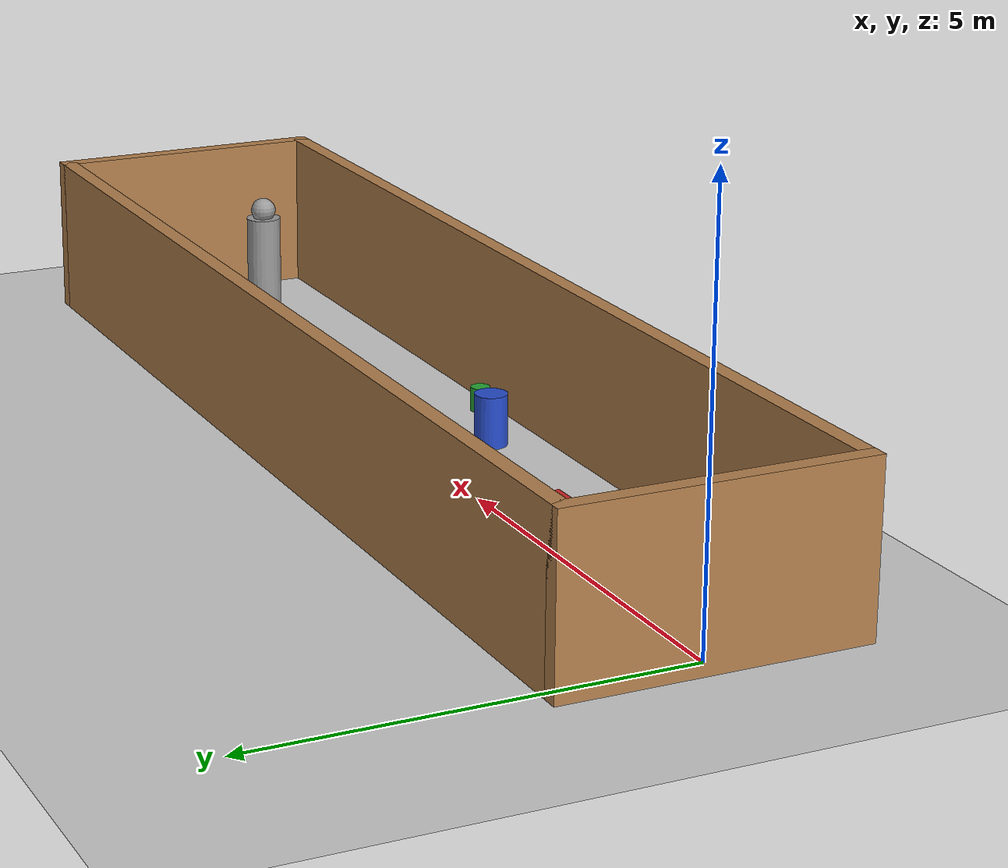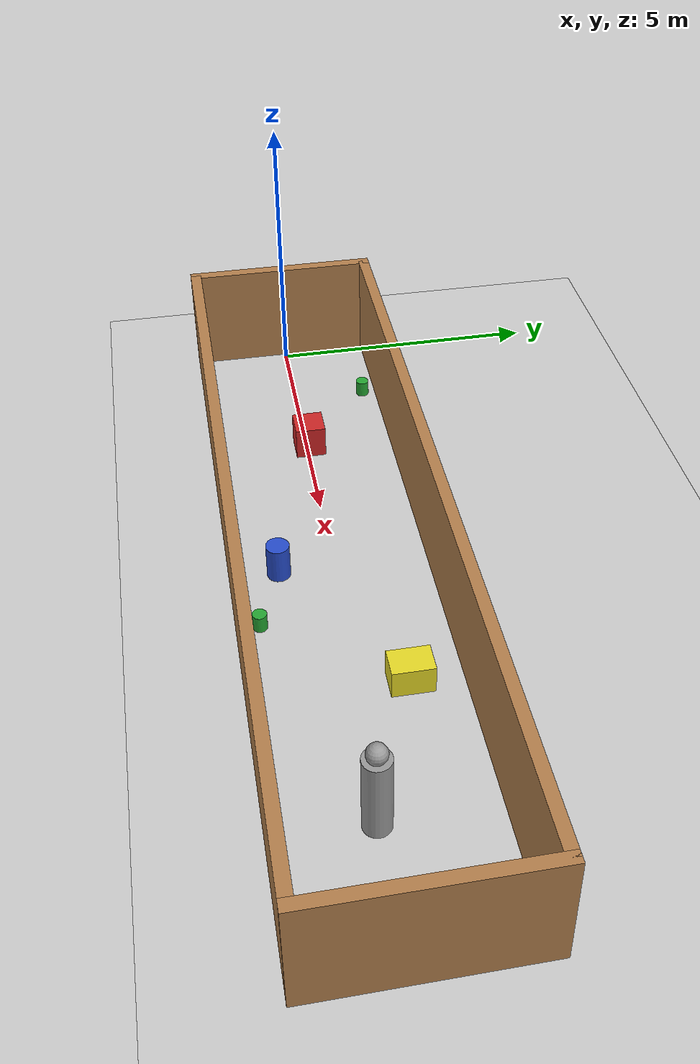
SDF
<?xml version="1.0"?>
<!--
  室内走廊 + 交错障碍物，用于验证"相机看到障碍 -> 转向避让 -> 恢复直行"。
  走廊沿 +x 方向，宽 3.2m，长 14m；机器人从 x=0.6 出发。
-->
<sdf version="1.6">
  <world name="vlbot_corridor">

    <physics name="default_physics" default="true" type="ode">
      <max_step_size>0.002</max_step_size>
      <real_time_factor>1.0</real_time_factor>
      <real_time_update_rate>500</real_time_update_rate>
    </physics>

    <scene>
      <ambient>0.45 0.45 0.48 1</ambient>
      <background>0.65 0.72 0.78 1</background>
      <shadows>true</shadows>
    </scene>

    <light type="directional" name="sun">
      <cast_shadows>true</cast_shadows>
      <pose>0 0 10 0 0 0</pose>
      <diffuse>0.95 0.95 0.92 1</diffuse>
      <specular>0.25 0.25 0.25 1</specular>
      <attenuation>
        <range>1000</range>
        <constant>0.9</constant>
        <linear>0.01</linear>
        <quadratic>0.001</quadratic>
      </attenuation>
      <direction>-0.35 0.2 -0.92</direction>
    </light>

    <!-- 顶灯，保证相机画面亮度稳定 -->
    <light type="point" name="ceiling_light_1">
      <pose>3 0 2.6 0 0 0</pose>
      <diffuse>0.8 0.8 0.75 1</diffuse>
      <specular>0.1 0.1 0.1 1</specular>
      <attenuation>
        <range>12</range>
        <constant>0.6</constant>
        <linear>0.05</linear>
        <quadratic>0.02</quadratic>
      </attenuation>
    </light>
    <light type="point" name="ceiling_light_2">
      <pose>9 0 2.6 0 0 0</pose>
      <diffuse>0.8 0.8 0.75 1</diffuse>
      <specular>0.1 0.1 0.1 1</specular>
      <attenuation>
        <range>12</range>
        <constant>0.6</constant>
        <linear>0.05</linear>
        <quadratic>0.02</quadratic>
      </attenuation>
    </light>

    <!-- 地面 -->
    <model name="ground_plane">
      <static>true</static>
      <link name="link">
        <collision name="collision">
          <geometry><plane><normal>0 0 1</normal><size>40 40</size></plane></geometry>
          <surface>
            <friction><ode><mu>0.8</mu><mu2>0.8</mu2></ode></friction>
          </surface>
        </collision>
        <visual name="visual">
          <geometry><plane><normal>0 0 1</normal><size>40 40</size></plane></geometry>
          <material>
            <script>
              <uri>file://media/materials/scripts/gazebo.material</uri>
              <name>Gazebo/Grey</name>
            </script>
          </material>
        </visual>
      </link>
    </model>

    <!-- 走廊墙体：左 / 右 / 尽头 / 起点后墙 -->
    <model name="wall_left">
      <static>true</static>
      <pose>7.0 1.7 1.0 0 0 0</pose>
      <link name="link">
        <collision name="c"><geometry><box><size>14.4 0.2 2.0</size></box></geometry></collision>
        <visual name="v">
          <geometry><box><size>14.4 0.2 2.0</size></box></geometry>
          <material><script><uri>file://media/materials/scripts/gazebo.material</uri><name>Gazebo/Wood</name></script></material>
        </visual>
      </link>
    </model>
    <model name="wall_right">
      <static>true</static>
      <pose>7.0 -1.7 1.0 0 0 0</pose>
      <link name="link">
        <collision name="c"><geometry><box><size>14.4 0.2 2.0</size></box></geometry></collision>
        <visual name="v">
          <geometry><box><size>14.4 0.2 2.0</size></box></geometry>
          <material><script><uri>file://media/materials/scripts/gazebo.material</uri><name>Gazebo/Wood</name></script></material>
        </visual>
      </link>
    </model>
    <model name="wall_end">
      <static>true</static>
      <pose>14.2 0 1.0 0 0 0</pose>
      <link name="link">
        <collision name="c"><geometry><box><size>0.2 3.6 2.0</size></box></geometry></collision>
        <visual name="v">
          <geometry><box><size>0.2 3.6 2.0</size></box></geometry>
          <material><script><uri>file://media/materials/scripts/gazebo.material</uri><name>Gazebo/Wood</name></script></material>
        </visual>
      </link>
    </model>
    <model name="wall_start">
      <static>true</static>
      <pose>-0.2 0 1.0 0 0 0</pose>
      <link name="link">
        <collision name="c"><geometry><box><size>0.2 3.6 2.0</size></box></geometry></collision>
        <visual name="v">
          <geometry><box><size>0.2 3.6 2.0</size></box></geometry>
          <material><script><uri>file://media/materials/scripts/gazebo.material</uri><name>Gazebo/Wood</name></script></material>
        </visual>
      </link>
    </model>

    <!-- 障碍 1：正中间的红箱子（最典型的“必须绕开”场景） -->
    <model name="red_box">
      <static>true</static>
      <pose>3.2 0.05 0.30 0 0 0</pose>
      <link name="link">
        <collision name="c"><geometry><box><size>0.55 0.55 0.60</size></box></geometry></collision>
        <visual name="v">
          <geometry><box><size>0.55 0.55 0.60</size></box></geometry>
          <material><script><uri>file://media/materials/scripts/gazebo.material</uri><name>Gazebo/Red</name></script></material>
        </visual>
      </link>
    </model>

    <!-- 障碍 2：靠右的蓝色垃圾桶（考验左右判断） -->
    <model name="blue_bin">
      <static>true</static>
      <pose>6.6 -0.95 0.32 0 0 0</pose>
      <link name="link">
        <collision name="c"><geometry><cylinder><radius>0.20</radius><length>0.64</length></cylinder></geometry></collision>
        <visual name="v">
          <geometry><cylinder><radius>0.20</radius><length>0.64</length></cylinder></geometry>
          <material><script><uri>file://media/materials/scripts/gazebo.material</uri><name>Gazebo/Blue</name></script></material>
        </visual>
      </link>
    </model>

    <!-- 障碍 3：靠左的黄色箱子 -->
    <model name="yellow_box">
      <static>true</static>
      <pose>9.4 0.75 0.25 0 0 0</pose>
      <link name="link">
        <collision name="c"><geometry><box><size>0.5 0.7 0.5</size></box></geometry></collision>
        <visual name="v">
          <geometry><box><size>0.5 0.7 0.5</size></box></geometry>
          <material><script><uri>file://media/materials/scripts/gazebo.material</uri><name>Gazebo/Yellow</name></script></material>
        </visual>
      </link>
    </model>

    <!-- 障碍 4：模拟“人”（圆柱身体 + 球头），语义类障碍 -->
    <model name="person">
      <static>true</static>
      <pose>12.0 -0.25 0 0 0 0</pose>
      <link name="link">
        <collision name="body"><pose>0 0 0.85 0 0 0</pose>
          <geometry><cylinder><radius>0.22</radius><length>1.4</length></cylinder></geometry></collision>
        <visual name="body_v"><pose>0 0 0.85 0 0 0</pose>
          <geometry><cylinder><radius>0.22</radius><length>1.4</length></cylinder></geometry>
          <material><script><uri>file://media/materials/scripts/gazebo.material</uri><name>Gazebo/Grey</name></script></material>
        </visual>
        <collision name="head"><pose>0 0 1.65 0 0 0</pose>
          <geometry><sphere><radius>0.16</radius></sphere></geometry></collision>
        <visual name="head_v"><pose>0 0 1.65 0 0 0</pose>
          <geometry><sphere><radius>0.16</radius></sphere></geometry>
          <material><script><uri>file://media/materials/scripts/gazebo.material</uri><name>Gazebo/Grey</name></script></material>
        </visual>
      </link>
    </model>

    <!-- 一些不会挡路的小杂物：制造视觉干扰，检验 VLM 不会误报 -->
    <model name="small_cone_1">
      <static>true</static>
      <pose>1.6 1.35 0.15 0 0 0</pose>
      <link name="link">
        <collision name="c"><geometry><cylinder><radius>0.12</radius><length>0.3</length></cylinder></geometry></collision>
        <visual name="v"><geometry><cylinder><radius>0.12</radius><length>0.3</length></cylinder></geometry>
          <material><script><uri>file://media/materials/scripts/gazebo.material</uri><name>Gazebo/Green</name></script></material>
        </visual>
      </link>
    </model>
    <model name="small_cone_2">
      <static>true</static>
      <pose>7.8 -1.4 0.15 0 0 0</pose>
      <link name="link">
        <collision name="c"><geometry><cylinder><radius>0.12</radius><length>0.3</length></cylinder></geometry></collision>
        <visual name="v"><geometry><cylinder><radius>0.12</radius><length>0.3</length></cylinder></geometry>
          <material><script><uri>file://media/materials/scripts/gazebo.material</uri><name>Gazebo/Green</name></script></material>
        </visual>
      </link>
    </model>

  </world>
</sdf>
